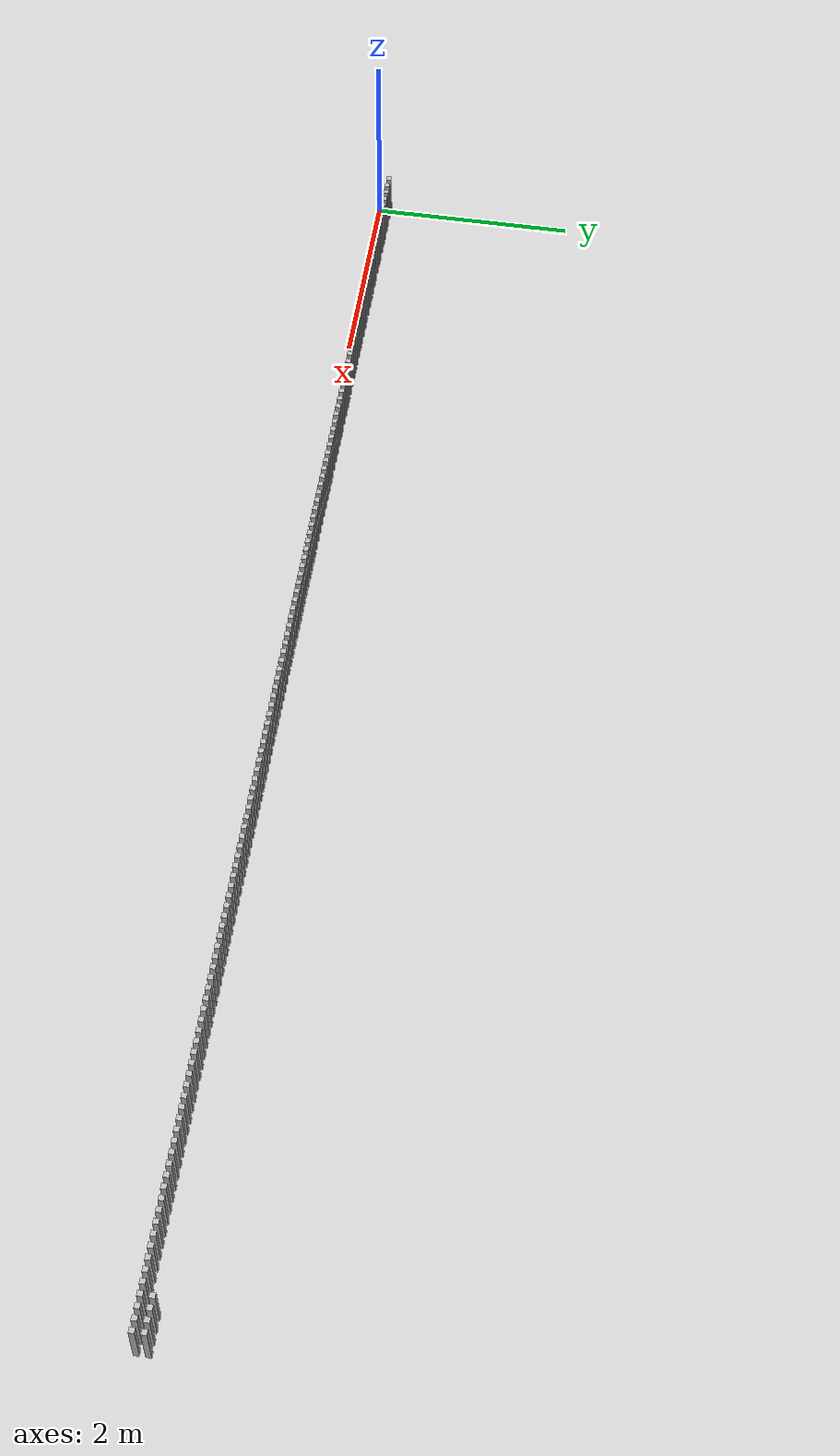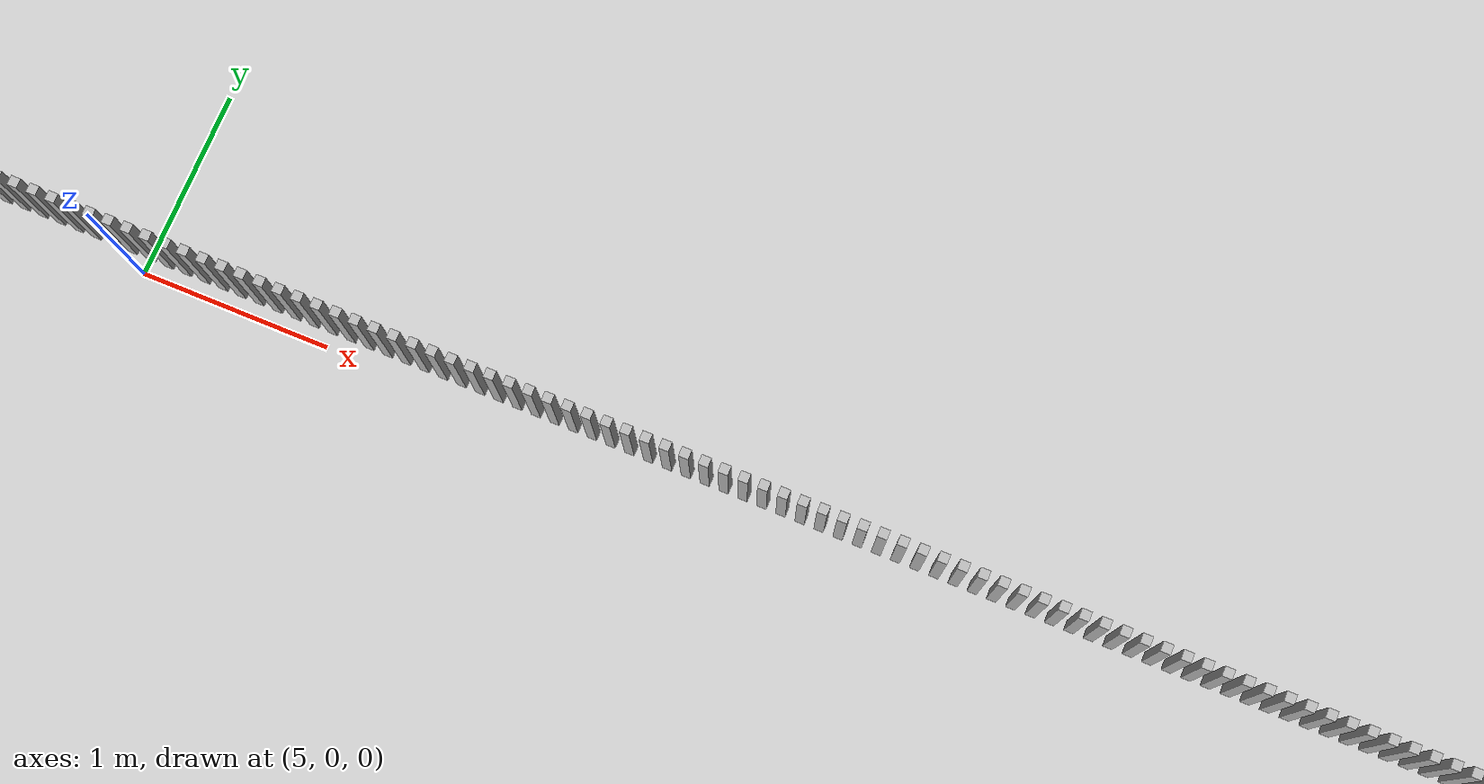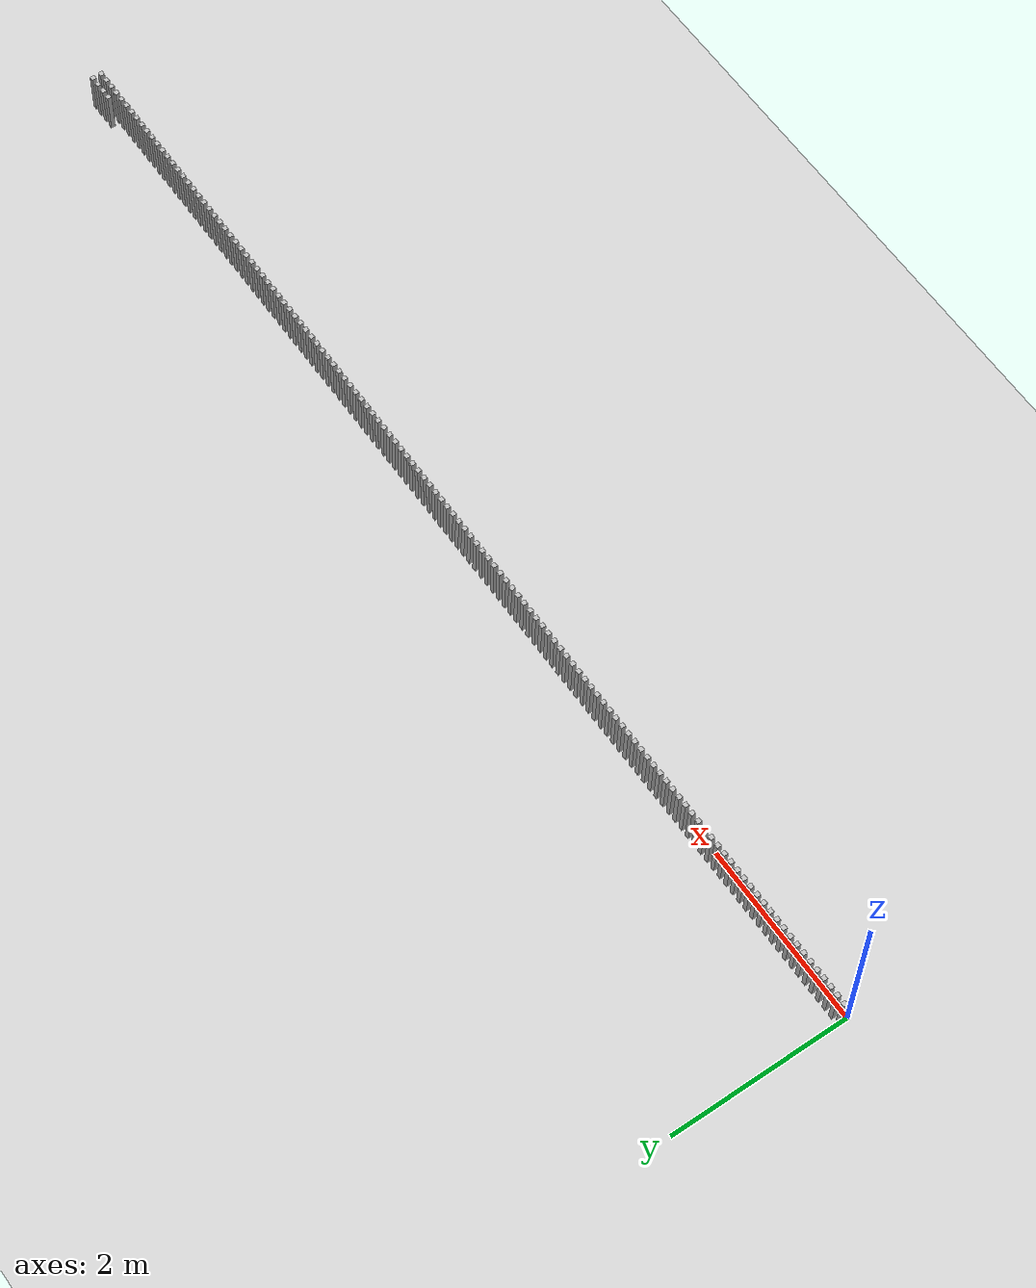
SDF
<sdf version="1.6">
 <world name="default_world">
  <include><uri>model://sun</uri></include>
  <include><uri>model://ground_plane</uri></include>
  <model name="wall_1177">
   <static>true</static>
   <link name="link">
    <collision name="collision"><geometry><box><size>0.05 0.05 0.5</size></box></geometry></collision>
    <visual name="visual"><geometry><box><size>0.05 0.05 0.5</size></box></geometry></visual>
    <pose>12.4 0.2 0.25 0 0 0</pose>
   </link>
  </model>
  <model name="wall_1178">
   <static>true</static>
   <link name="link">
    <collision name="collision"><geometry><box><size>0.05 0.05 0.5</size></box></geometry></collision>
    <visual name="visual"><geometry><box><size>0.05 0.05 0.5</size></box></geometry></visual>
    <pose>12.5 0.2 0.25 0 0 0</pose>
   </link>
  </model>
  <model name="wall_1179">
   <static>true</static>
   <link name="link">
    <collision name="collision"><geometry><box><size>0.05 0.05 0.5</size></box></geometry></collision>
    <visual name="visual"><geometry><box><size>0.05 0.05 0.5</size></box></geometry></visual>
    <pose>12.600000000000001 0.2 0.25 0 0 0</pose>
   </link>
  </model>
  <model name="wall_1180">
   <static>true</static>
   <link name="link">
    <collision name="collision"><geometry><box><size>0.05 0.05 0.5</size></box></geometry></collision>
    <visual name="visual"><geometry><box><size>0.05 0.05 0.5</size></box></geometry></visual>
    <pose>12.700000000000001 0.2 0.25 0 0 0</pose>
   </link>
  </model>
  <model name="wall_1181">
   <static>true</static>
   <link name="link">
    <collision name="collision"><geometry><box><size>0.05 0.05 0.5</size></box></geometry></collision>
    <visual name="visual"><geometry><box><size>0.05 0.05 0.5</size></box></geometry></visual>
    <pose>0.0 0.1 0.25 0 0 0</pose>
   </link>
  </model>
  <model name="wall_1182">
   <static>true</static>
   <link name="link">
    <collision name="collision"><geometry><box><size>0.05 0.05 0.5</size></box></geometry></collision>
    <visual name="visual"><geometry><box><size>0.05 0.05 0.5</size></box></geometry></visual>
    <pose>0.1 0.1 0.25 0 0 0</pose>
   </link>
  </model>
  <model name="wall_1183">
   <static>true</static>
   <link name="link">
    <collision name="collision"><geometry><box><size>0.05 0.05 0.5</size></box></geometry></collision>
    <visual name="visual"><geometry><box><size>0.05 0.05 0.5</size></box></geometry></visual>
    <pose>0.2 0.1 0.25 0 0 0</pose>
   </link>
  </model>
  <model name="wall_1184">
   <static>true</static>
   <link name="link">
    <collision name="collision"><geometry><box><size>0.05 0.05 0.5</size></box></geometry></collision>
    <visual name="visual"><geometry><box><size>0.05 0.05 0.5</size></box></geometry></visual>
    <pose>0.30000000000000004 0.1 0.25 0 0 0</pose>
   </link>
  </model>
  <model name="wall_1185">
   <static>true</static>
   <link name="link">
    <collision name="collision"><geometry><box><size>0.05 0.05 0.5</size></box></geometry></collision>
    <visual name="visual"><geometry><box><size>0.05 0.05 0.5</size></box></geometry></visual>
    <pose>0.4 0.1 0.25 0 0 0</pose>
   </link>
  </model>
  <model name="wall_1186">
   <static>true</static>
   <link name="link">
    <collision name="collision"><geometry><box><size>0.05 0.05 0.5</size></box></geometry></collision>
    <visual name="visual"><geometry><box><size>0.05 0.05 0.5</size></box></geometry></visual>
    <pose>0.5 0.1 0.25 0 0 0</pose>
   </link>
  </model>
  <model name="wall_1187">
   <static>true</static>
   <link name="link">
    <collision name="collision"><geometry><box><size>0.05 0.05 0.5</size></box></geometry></collision>
    <visual name="visual"><geometry><box><size>0.05 0.05 0.5</size></box></geometry></visual>
    <pose>0.6000000000000001 0.1 0.25 0 0 0</pose>
   </link>
  </model>
  <model name="wall_1188">
   <static>true</static>
   <link name="link">
    <collision name="collision"><geometry><box><size>0.05 0.05 0.5</size></box></geometry></collision>
    <visual name="visual"><geometry><box><size>0.05 0.05 0.5</size></box></geometry></visual>
    <pose>0.7000000000000001 0.1 0.25 0 0 0</pose>
   </link>
  </model>
  <model name="wall_1189">
   <static>true</static>
   <link name="link">
    <collision name="collision"><geometry><box><size>0.05 0.05 0.5</size></box></geometry></collision>
    <visual name="visual"><geometry><box><size>0.05 0.05 0.5</size></box></geometry></visual>
    <pose>0.8 0.1 0.25 0 0 0</pose>
   </link>
  </model>
  <model name="wall_1190">
   <static>true</static>
   <link name="link">
    <collision name="collision"><geometry><box><size>0.05 0.05 0.5</size></box></geometry></collision>
    <visual name="visual"><geometry><box><size>0.05 0.05 0.5</size></box></geometry></visual>
    <pose>0.9 0.1 0.25 0 0 0</pose>
   </link>
  </model>
  <model name="wall_1191">
   <static>true</static>
   <link name="link">
    <collision name="collision"><geometry><box><size>0.05 0.05 0.5</size></box></geometry></collision>
    <visual name="visual"><geometry><box><size>0.05 0.05 0.5</size></box></geometry></visual>
    <pose>1.0 0.1 0.25 0 0 0</pose>
   </link>
  </model>
  <model name="wall_1192">
   <static>true</static>
   <link name="link">
    <collision name="collision"><geometry><box><size>0.05 0.05 0.5</size></box></geometry></collision>
    <visual name="visual"><geometry><box><size>0.05 0.05 0.5</size></box></geometry></visual>
    <pose>1.1 0.1 0.25 0 0 0</pose>
   </link>
  </model>
  <model name="wall_1193">
   <static>true</static>
   <link name="link">
    <collision name="collision"><geometry><box><size>0.05 0.05 0.5</size></box></geometry></collision>
    <visual name="visual"><geometry><box><size>0.05 0.05 0.5</size></box></geometry></visual>
    <pose>1.2000000000000002 0.1 0.25 0 0 0</pose>
   </link>
  </model>
  <model name="wall_1194">
   <static>true</static>
   <link name="link">
    <collision name="collision"><geometry><box><size>0.05 0.05 0.5</size></box></geometry></collision>
    <visual name="visual"><geometry><box><size>0.05 0.05 0.5</size></box></geometry></visual>
    <pose>1.3 0.1 0.25 0 0 0</pose>
   </link>
  </model>
  <model name="wall_1195">
   <static>true</static>
   <link name="link">
    <collision name="collision"><geometry><box><size>0.05 0.05 0.5</size></box></geometry></collision>
    <visual name="visual"><geometry><box><size>0.05 0.05 0.5</size></box></geometry></visual>
    <pose>1.4000000000000001 0.1 0.25 0 0 0</pose>
   </link>
  </model>
  <model name="wall_1196">
   <static>true</static>
   <link name="link">
    <collision name="collision"><geometry><box><size>0.05 0.05 0.5</size></box></geometry></collision>
    <visual name="visual"><geometry><box><size>0.05 0.05 0.5</size></box></geometry></visual>
    <pose>1.5 0.1 0.25 0 0 0</pose>
   </link>
  </model>
  <model name="wall_1197">
   <static>true</static>
   <link name="link">
    <collision name="collision"><geometry><box><size>0.05 0.05 0.5</size></box></geometry></collision>
    <visual name="visual"><geometry><box><size>0.05 0.05 0.5</size></box></geometry></visual>
    <pose>1.6 0.1 0.25 0 0 0</pose>
   </link>
  </model>
  <model name="wall_1198">
   <static>true</static>
   <link name="link">
    <collision name="collision"><geometry><box><size>0.05 0.05 0.5</size></box></geometry></collision>
    <visual name="visual"><geometry><box><size>0.05 0.05 0.5</size></box></geometry></visual>
    <pose>1.7000000000000002 0.1 0.25 0 0 0</pose>
   </link>
  </model>
  <model name="wall_1199">
   <static>true</static>
   <link name="link">
    <collision name="collision"><geometry><box><size>0.05 0.05 0.5</size></box></geometry></collision>
    <visual name="visual"><geometry><box><size>0.05 0.05 0.5</size></box></geometry></visual>
    <pose>1.8 0.1 0.25 0 0 0</pose>
   </link>
  </model>
  <model name="wall_1200">
   <static>true</static>
   <link name="link">
    <collision name="collision"><geometry><box><size>0.05 0.05 0.5</size></box></geometry></collision>
    <visual name="visual"><geometry><box><size>0.05 0.05 0.5</size></box></geometry></visual>
    <pose>1.9000000000000001 0.1 0.25 0 0 0</pose>
   </link>
  </model>
  <model name="wall_1201">
   <static>true</static>
   <link name="link">
    <collision name="collision"><geometry><box><size>0.05 0.05 0.5</size></box></geometry></collision>
    <visual name="visual"><geometry><box><size>0.05 0.05 0.5</size></box></geometry></visual>
    <pose>2.0 0.1 0.25 0 0 0</pose>
   </link>
  </model>
  <model name="wall_1202">
   <static>true</static>
   <link name="link">
    <collision name="collision"><geometry><box><size>0.05 0.05 0.5</size></box></geometry></collision>
    <visual name="visual"><geometry><box><size>0.05 0.05 0.5</size></box></geometry></visual>
    <pose>2.1 0.1 0.25 0 0 0</pose>
   </link>
  </model>
  <model name="wall_1203">
   <static>true</static>
   <link name="link">
    <collision name="collision"><geometry><box><size>0.05 0.05 0.5</size></box></geometry></collision>
    <visual name="visual"><geometry><box><size>0.05 0.05 0.5</size></box></geometry></visual>
    <pose>2.2 0.1 0.25 0 0 0</pose>
   </link>
  </model>
  <model name="wall_1204">
   <static>true</static>
   <link name="link">
    <collision name="collision"><geometry><box><size>0.05 0.05 0.5</size></box></geometry></collision>
    <visual name="visual"><geometry><box><size>0.05 0.05 0.5</size></box></geometry></visual>
    <pose>2.3000000000000003 0.1 0.25 0 0 0</pose>
   </link>
  </model>
  <model name="wall_1205">
   <static>true</static>
   <link name="link">
    <collision name="collision"><geometry><box><size>0.05 0.05 0.5</size></box></geometry></collision>
    <visual name="visual"><geometry><box><size>0.05 0.05 0.5</size></box></geometry></visual>
    <pose>2.4000000000000004 0.1 0.25 0 0 0</pose>
   </link>
  </model>
  <model name="wall_1206">
   <static>true</static>
   <link name="link">
    <collision name="collision"><geometry><box><size>0.05 0.05 0.5</size></box></geometry></collision>
    <visual name="visual"><geometry><box><size>0.05 0.05 0.5</size></box></geometry></visual>
    <pose>2.5 0.1 0.25 0 0 0</pose>
   </link>
  </model>
  <model name="wall_1207">
   <static>true</static>
   <link name="link">
    <collision name="collision"><geometry><box><size>0.05 0.05 0.5</size></box></geometry></collision>
    <visual name="visual"><geometry><box><size>0.05 0.05 0.5</size></box></geometry></visual>
    <pose>2.6 0.1 0.25 0 0 0</pose>
   </link>
  </model>
  <model name="wall_1208">
   <static>true</static>
   <link name="link">
    <collision name="collision"><geometry><box><size>0.05 0.05 0.5</size></box></geometry></collision>
    <visual name="visual"><geometry><box><size>0.05 0.05 0.5</size></box></geometry></visual>
    <pose>2.7 0.1 0.25 0 0 0</pose>
   </link>
  </model>
  <model name="wall_1209">
   <static>true</static>
   <link name="link">
    <collision name="collision"><geometry><box><size>0.05 0.05 0.5</size></box></geometry></collision>
    <visual name="visual"><geometry><box><size>0.05 0.05 0.5</size></box></geometry></visual>
    <pose>2.8000000000000003 0.1 0.25 0 0 0</pose>
   </link>
  </model>
  <model name="wall_1210">
   <static>true</static>
   <link name="link">
    <collision name="collision"><geometry><box><size>0.05 0.05 0.5</size></box></geometry></collision>
    <visual name="visual"><geometry><box><size>0.05 0.05 0.5</size></box></geometry></visual>
    <pose>2.9000000000000004 0.1 0.25 0 0 0</pose>
   </link>
  </model>
  <model name="wall_1211">
   <static>true</static>
   <link name="link">
    <collision name="collision"><geometry><box><size>0.05 0.05 0.5</size></box></geometry></collision>
    <visual name="visual"><geometry><box><size>0.05 0.05 0.5</size></box></geometry></visual>
    <pose>3.0 0.1 0.25 0 0 0</pose>
   </link>
  </model>
  <model name="wall_1212">
   <static>true</static>
   <link name="link">
    <collision name="collision"><geometry><box><size>0.05 0.05 0.5</size></box></geometry></collision>
    <visual name="visual"><geometry><box><size>0.05 0.05 0.5</size></box></geometry></visual>
    <pose>3.1 0.1 0.25 0 0 0</pose>
   </link>
  </model>
  <model name="wall_1213">
   <static>true</static>
   <link name="link">
    <collision name="collision"><geometry><box><size>0.05 0.05 0.5</size></box></geometry></collision>
    <visual name="visual"><geometry><box><size>0.05 0.05 0.5</size></box></geometry></visual>
    <pose>3.2 0.1 0.25 0 0 0</pose>
   </link>
  </model>
  <model name="wall_1214">
   <static>true</static>
   <link name="link">
    <collision name="collision"><geometry><box><size>0.05 0.05 0.5</size></box></geometry></collision>
    <visual name="visual"><geometry><box><size>0.05 0.05 0.5</size></box></geometry></visual>
    <pose>3.3000000000000003 0.1 0.25 0 0 0</pose>
   </link>
  </model>
  <model name="wall_1215">
   <static>true</static>
   <link name="link">
    <collision name="collision"><geometry><box><size>0.05 0.05 0.5</size></box></geometry></collision>
    <visual name="visual"><geometry><box><size>0.05 0.05 0.5</size></box></geometry></visual>
    <pose>3.4000000000000004 0.1 0.25 0 0 0</pose>
   </link>
  </model>
  <model name="wall_1216">
   <static>true</static>
   <link name="link">
    <collision name="collision"><geometry><box><size>0.05 0.05 0.5</size></box></geometry></collision>
    <visual name="visual"><geometry><box><size>0.05 0.05 0.5</size></box></geometry></visual>
    <pose>3.5 0.1 0.25 0 0 0</pose>
   </link>
  </model>
  <model name="wall_1217">
   <static>true</static>
   <link name="link">
    <collision name="collision"><geometry><box><size>0.05 0.05 0.5</size></box></geometry></collision>
    <visual name="visual"><geometry><box><size>0.05 0.05 0.5</size></box></geometry></visual>
    <pose>3.6 0.1 0.25 0 0 0</pose>
   </link>
  </model>
  <model name="wall_1218">
   <static>true</static>
   <link name="link">
    <collision name="collision"><geometry><box><size>0.05 0.05 0.5</size></box></geometry></collision>
    <visual name="visual"><geometry><box><size>0.05 0.05 0.5</size></box></geometry></visual>
    <pose>3.7 0.1 0.25 0 0 0</pose>
   </link>
  </model>
  <model name="wall_1219">
   <static>true</static>
   <link name="link">
    <collision name="collision"><geometry><box><size>0.05 0.05 0.5</size></box></geometry></collision>
    <visual name="visual"><geometry><box><size>0.05 0.05 0.5</size></box></geometry></visual>
    <pose>3.8000000000000003 0.1 0.25 0 0 0</pose>
   </link>
  </model>
  <model name="wall_1220">
   <static>true</static>
   <link name="link">
    <collision name="collision"><geometry><box><size>0.05 0.05 0.5</size></box></geometry></collision>
    <visual name="visual"><geometry><box><size>0.05 0.05 0.5</size></box></geometry></visual>
    <pose>3.9000000000000004 0.1 0.25 0 0 0</pose>
   </link>
  </model>
  <model name="wall_1221">
   <static>true</static>
   <link name="link">
    <collision name="collision"><geometry><box><size>0.05 0.05 0.5</size></box></geometry></collision>
    <visual name="visual"><geometry><box><size>0.05 0.05 0.5</size></box></geometry></visual>
    <pose>4.0 0.1 0.25 0 0 0</pose>
   </link>
  </model>
  <model name="wall_1222">
   <static>true</static>
   <link name="link">
    <collision name="collision"><geometry><box><size>0.05 0.05 0.5</size></box></geometry></collision>
    <visual name="visual"><geometry><box><size>0.05 0.05 0.5</size></box></geometry></visual>
    <pose>4.1000000000000005 0.1 0.25 0 0 0</pose>
   </link>
  </model>
  <model name="wall_1223">
   <static>true</static>
   <link name="link">
    <collision name="collision"><geometry><box><size>0.05 0.05 0.5</size></box></geometry></collision>
    <visual name="visual"><geometry><box><size>0.05 0.05 0.5</size></box></geometry></visual>
    <pose>4.2 0.1 0.25 0 0 0</pose>
   </link>
  </model>
  <model name="wall_1224">
   <static>true</static>
   <link name="link">
    <collision name="collision"><geometry><box><size>0.05 0.05 0.5</size></box></geometry></collision>
    <visual name="visual"><geometry><box><size>0.05 0.05 0.5</size></box></geometry></visual>
    <pose>4.3 0.1 0.25 0 0 0</pose>
   </link>
  </model>
  <model name="wall_1225">
   <static>true</static>
   <link name="link">
    <collision name="collision"><geometry><box><size>0.05 0.05 0.5</size></box></geometry></collision>
    <visual name="visual"><geometry><box><size>0.05 0.05 0.5</size></box></geometry></visual>
    <pose>4.4 0.1 0.25 0 0 0</pose>
   </link>
  </model>
  <model name="wall_1226">
   <static>true</static>
   <link name="link">
    <collision name="collision"><geometry><box><size>0.05 0.05 0.5</size></box></geometry></collision>
    <visual name="visual"><geometry><box><size>0.05 0.05 0.5</size></box></geometry></visual>
    <pose>4.5 0.1 0.25 0 0 0</pose>
   </link>
  </model>
  <model name="wall_1227">
   <static>true</static>
   <link name="link">
    <collision name="collision"><geometry><box><size>0.05 0.05 0.5</size></box></geometry></collision>
    <visual name="visual"><geometry><box><size>0.05 0.05 0.5</size></box></geometry></visual>
    <pose>4.6000000000000005 0.1 0.25 0 0 0</pose>
   </link>
  </model>
  <model name="wall_1228">
   <static>true</static>
   <link name="link">
    <collision name="collision"><geometry><box><size>0.05 0.05 0.5</size></box></geometry></collision>
    <visual name="visual"><geometry><box><size>0.05 0.05 0.5</size></box></geometry></visual>
    <pose>4.7 0.1 0.25 0 0 0</pose>
   </link>
  </model>
  <model name="wall_1229">
   <static>true</static>
   <link name="link">
    <collision name="collision"><geometry><box><size>0.05 0.05 0.5</size></box></geometry></collision>
    <visual name="visual"><geometry><box><size>0.05 0.05 0.5</size></box></geometry></visual>
    <pose>4.800000000000001 0.1 0.25 0 0 0</pose>
   </link>
  </model>
  <model name="wall_1230">
   <static>true</static>
   <link name="link">
    <collision name="collision"><geometry><box><size>0.05 0.05 0.5</size></box></geometry></collision>
    <visual name="visual"><geometry><box><size>0.05 0.05 0.5</size></box></geometry></visual>
    <pose>4.9 0.1 0.25 0 0 0</pose>
   </link>
  </model>
  <model name="wall_1231">
   <static>true</static>
   <link name="link">
    <collision name="collision"><geometry><box><size>0.05 0.05 0.5</size></box></geometry></collision>
    <visual name="visual"><geometry><box><size>0.05 0.05 0.5</size></box></geometry></visual>
    <pose>5.0 0.1 0.25 0 0 0</pose>
   </link>
  </model>
  <model name="wall_1232">
   <static>true</static>
   <link name="link">
    <collision name="collision"><geometry><box><size>0.05 0.05 0.5</size></box></geometry></collision>
    <visual name="visual"><geometry><box><size>0.05 0.05 0.5</size></box></geometry></visual>
    <pose>5.1000000000000005 0.1 0.25 0 0 0</pose>
   </link>
  </model>
  <model name="wall_1233">
   <static>true</static>
   <link name="link">
    <collision name="collision"><geometry><box><size>0.05 0.05 0.5</size></box></geometry></collision>
    <visual name="visual"><geometry><box><size>0.05 0.05 0.5</size></box></geometry></visual>
    <pose>5.2 0.1 0.25 0 0 0</pose>
   </link>
  </model>
  <model name="wall_1234">
   <static>true</static>
   <link name="link">
    <collision name="collision"><geometry><box><size>0.05 0.05 0.5</size></box></geometry></collision>
    <visual name="visual"><geometry><box><size>0.05 0.05 0.5</size></box></geometry></visual>
    <pose>5.300000000000001 0.1 0.25 0 0 0</pose>
   </link>
  </model>
  <model name="wall_1235">
   <static>true</static>
   <link name="link">
    <collision name="collision"><geometry><box><size>0.05 0.05 0.5</size></box></geometry></collision>
    <visual name="visual"><geometry><box><size>0.05 0.05 0.5</size></box></geometry></visual>
    <pose>5.4 0.1 0.25 0 0 0</pose>
   </link>
  </model>
  <model name="wall_1236">
   <static>true</static>
   <link name="link">
    <collision name="collision"><geometry><box><size>0.05 0.05 0.5</size></box></geometry></collision>
    <visual name="visual"><geometry><box><size>0.05 0.05 0.5</size></box></geometry></visual>
    <pose>5.5 0.1 0.25 0 0 0</pose>
   </link>
  </model>
  <model name="wall_1237">
   <static>true</static>
   <link name="link">
    <collision name="collision"><geometry><box><size>0.05 0.05 0.5</size></box></geometry></collision>
    <visual name="visual"><geometry><box><size>0.05 0.05 0.5</size></box></geometry></visual>
    <pose>5.6000000000000005 0.1 0.25 0 0 0</pose>
   </link>
  </model>
  <model name="wall_1238">
   <static>true</static>
   <link name="link">
    <collision name="collision"><geometry><box><size>0.05 0.05 0.5</size></box></geometry></collision>
    <visual name="visual"><geometry><box><size>0.05 0.05 0.5</size></box></geometry></visual>
    <pose>5.7 0.1 0.25 0 0 0</pose>
   </link>
  </model>
  <model name="wall_1239">
   <static>true</static>
   <link name="link">
    <collision name="collision"><geometry><box><size>0.05 0.05 0.5</size></box></geometry></collision>
    <visual name="visual"><geometry><box><size>0.05 0.05 0.5</size></box></geometry></visual>
    <pose>5.800000000000001 0.1 0.25 0 0 0</pose>
   </link>
  </model>
  <model name="wall_1240">
   <static>true</static>
   <link name="link">
    <collision name="collision"><geometry><box><size>0.05 0.05 0.5</size></box></geometry></collision>
    <visual name="visual"><geometry><box><size>0.05 0.05 0.5</size></box></geometry></visual>
    <pose>5.9 0.1 0.25 0 0 0</pose>
   </link>
  </model>
  <model name="wall_1241">
   <static>true</static>
   <link name="link">
    <collision name="collision"><geometry><box><size>0.05 0.05 0.5</size></box></geometry></collision>
    <visual name="visual"><geometry><box><size>0.05 0.05 0.5</size></box></geometry></visual>
    <pose>6.0 0.1 0.25 0 0 0</pose>
   </link>
  </model>
  <model name="wall_1242">
   <static>true</static>
   <link name="link">
    <collision name="collision"><geometry><box><size>0.05 0.05 0.5</size></box></geometry></collision>
    <visual name="visual"><geometry><box><size>0.05 0.05 0.5</size></box></geometry></visual>
    <pose>6.1000000000000005 0.1 0.25 0 0 0</pose>
   </link>
  </model>
  <model name="wall_1243">
   <static>true</static>
   <link name="link">
    <collision name="collision"><geometry><box><size>0.05 0.05 0.5</size></box></geometry></collision>
    <visual name="visual"><geometry><box><size>0.05 0.05 0.5</size></box></geometry></visual>
    <pose>6.2 0.1 0.25 0 0 0</pose>
   </link>
  </model>
  <model name="wall_1244">
   <static>true</static>
   <link name="link">
    <collision name="collision"><geometry><box><size>0.05 0.05 0.5</size></box></geometry></collision>
    <visual name="visual"><geometry><box><size>0.05 0.05 0.5</size></box></geometry></visual>
    <pose>6.300000000000001 0.1 0.25 0 0 0</pose>
   </link>
  </model>
  <model name="wall_1245">
   <static>true</static>
   <link name="link">
    <collision name="collision"><geometry><box><size>0.05 0.05 0.5</size></box></geometry></collision>
    <visual name="visual"><geometry><box><size>0.05 0.05 0.5</size></box></geometry></visual>
    <pose>6.4 0.1 0.25 0 0 0</pose>
   </link>
  </model>
  <model name="wall_1246">
   <static>true</static>
   <link name="link">
    <collision name="collision"><geometry><box><size>0.05 0.05 0.5</size></box></geometry></collision>
    <visual name="visual"><geometry><box><size>0.05 0.05 0.5</size></box></geometry></visual>
    <pose>6.5 0.1 0.25 0 0 0</pose>
   </link>
  </model>
  <model name="wall_1247">
   <static>true</static>
   <link name="link">
    <collision name="collision"><geometry><box><size>0.05 0.05 0.5</size></box></geometry></collision>
    <visual name="visual"><geometry><box><size>0.05 0.05 0.5</size></box></geometry></visual>
    <pose>6.6000000000000005 0.1 0.25 0 0 0</pose>
   </link>
  </model>
  <model name="wall_1248">
   <static>true</static>
   <link name="link">
    <collision name="collision"><geometry><box><size>0.05 0.05 0.5</size></box></geometry></collision>
    <visual name="visual"><geometry><box><size>0.05 0.05 0.5</size></box></geometry></visual>
    <pose>6.7 0.1 0.25 0 0 0</pose>
   </link>
  </model>
  <model name="wall_1249">
   <static>true</static>
   <link name="link">
    <collision name="collision"><geometry><box><size>0.05 0.05 0.5</size></box></geometry></collision>
    <visual name="visual"><geometry><box><size>0.05 0.05 0.5</size></box></geometry></visual>
    <pose>6.800000000000001 0.1 0.25 0 0 0</pose>
   </link>
  </model>
  <model name="wall_1250">
   <static>true</static>
   <link name="link">
    <collision name="collision"><geometry><box><size>0.05 0.05 0.5</size></box></geometry></collision>
    <visual name="visual"><geometry><box><size>0.05 0.05 0.5</size></box></geometry></visual>
    <pose>6.9 0.1 0.25 0 0 0</pose>
   </link>
  </model>
  <model name="wall_1251">
   <static>true</static>
   <link name="link">
    <collision name="collision"><geometry><box><size>0.05 0.05 0.5</size></box></geometry></collision>
    <visual name="visual"><geometry><box><size>0.05 0.05 0.5</size></box></geometry></visual>
    <pose>7.0 0.1 0.25 0 0 0</pose>
   </link>
  </model>
  <model name="wall_1252">
   <static>true</static>
   <link name="link">
    <collision name="collision"><geometry><box><size>0.05 0.05 0.5</size></box></geometry></collision>
    <visual name="visual"><geometry><box><size>0.05 0.05 0.5</size></box></geometry></visual>
    <pose>7.1000000000000005 0.1 0.25 0 0 0</pose>
   </link>
  </model>
  <model name="wall_1253">
   <static>true</static>
   <link name="link">
    <collision name="collision"><geometry><box><size>0.05 0.05 0.5</size></box></geometry></collision>
    <visual name="visual"><geometry><box><size>0.05 0.05 0.5</size></box></geometry></visual>
    <pose>7.2 0.1 0.25 0 0 0</pose>
   </link>
  </model>
  <model name="wall_1254">
   <static>true</static>
   <link name="link">
    <collision name="collision"><geometry><box><size>0.05 0.05 0.5</size></box></geometry></collision>
    <visual name="visual"><geometry><box><size>0.05 0.05 0.5</size></box></geometry></visual>
    <pose>7.300000000000001 0.1 0.25 0 0 0</pose>
   </link>
  </model>
  <model name="wall_1255">
   <static>true</static>
   <link name="link">
    <collision name="collision"><geometry><box><size>0.05 0.05 0.5</size></box></geometry></collision>
    <visual name="visual"><geometry><box><size>0.05 0.05 0.5</size></box></geometry></visual>
    <pose>7.4 0.1 0.25 0 0 0</pose>
   </link>
  </model>
  <model name="wall_1256">
   <static>true</static>
   <link name="link">
    <collision name="collision"><geometry><box><size>0.05 0.05 0.5</size></box></geometry></collision>
    <visual name="visual"><geometry><box><size>0.05 0.05 0.5</size></box></geometry></visual>
    <pose>7.5 0.1 0.25 0 0 0</pose>
   </link>
  </model>
  <model name="wall_1257">
   <static>true</static>
   <link name="link">
    <collision name="collision"><geometry><box><size>0.05 0.05 0.5</size></box></geometry></collision>
    <visual name="visual"><geometry><box><size>0.05 0.05 0.5</size></box></geometry></visual>
    <pose>7.6000000000000005 0.1 0.25 0 0 0</pose>
   </link>
  </model>
  <model name="wall_1258">
   <static>true</static>
   <link name="link">
    <collision name="collision"><geometry><box><size>0.05 0.05 0.5</size></box></geometry></collision>
    <visual name="visual"><geometry><box><size>0.05 0.05 0.5</size></box></geometry></visual>
    <pose>7.7 0.1 0.25 0 0 0</pose>
   </link>
  </model>
  <model name="wall_1259">
   <static>true</static>
   <link name="link">
    <collision name="collision"><geometry><box><size>0.05 0.05 0.5</size></box></geometry></collision>
    <visual name="visual"><geometry><box><size>0.05 0.05 0.5</size></box></geometry></visual>
    <pose>7.800000000000001 0.1 0.25 0 0 0</pose>
   </link>
  </model>
  <model name="wall_1260">
   <static>true</static>
   <link name="link">
    <collision name="collision"><geometry><box><size>0.05 0.05 0.5</size></box></geometry></collision>
    <visual name="visual"><geometry><box><size>0.05 0.05 0.5</size></box></geometry></visual>
    <pose>7.9 0.1 0.25 0 0 0</pose>
   </link>
  </model>
  <model name="wall_1261">
   <static>true</static>
   <link name="link">
    <collision name="collision"><geometry><box><size>0.05 0.05 0.5</size></box></geometry></collision>
    <visual name="visual"><geometry><box><size>0.05 0.05 0.5</size></box></geometry></visual>
    <pose>8.0 0.1 0.25 0 0 0</pose>
   </link>
  </model>
  <model name="wall_1262">
   <static>true</static>
   <link name="link">
    <collision name="collision"><geometry><box><size>0.05 0.05 0.5</size></box></geometry></collision>
    <visual name="visual"><geometry><box><size>0.05 0.05 0.5</size></box></geometry></visual>
    <pose>8.1 0.1 0.25 0 0 0</pose>
   </link>
  </model>
  <model name="wall_1263">
   <static>true</static>
   <link name="link">
    <collision name="collision"><geometry><box><size>0.05 0.05 0.5</size></box></geometry></collision>
    <visual name="visual"><geometry><box><size>0.05 0.05 0.5</size></box></geometry></visual>
    <pose>8.200000000000001 0.1 0.25 0 0 0</pose>
   </link>
  </model>
  <model name="wall_1264">
   <static>true</static>
   <link name="link">
    <collision name="collision"><geometry><box><size>0.05 0.05 0.5</size></box></geometry></collision>
    <visual name="visual"><geometry><box><size>0.05 0.05 0.5</size></box></geometry></visual>
    <pose>8.3 0.1 0.25 0 0 0</pose>
   </link>
  </model>
  <model name="wall_1265">
   <static>true</static>
   <link name="link">
    <collision name="collision"><geometry><box><size>0.05 0.05 0.5</size></box></geometry></collision>
    <visual name="visual"><geometry><box><size>0.05 0.05 0.5</size></box></geometry></visual>
    <pose>8.4 0.1 0.25 0 0 0</pose>
   </link>
  </model>
  <model name="wall_1266">
   <static>true</static>
   <link name="link">
    <collision name="collision"><geometry><box><size>0.05 0.05 0.5</size></box></geometry></collision>
    <visual name="visual"><geometry><box><size>0.05 0.05 0.5</size></box></geometry></visual>
    <pose>8.5 0.1 0.25 0 0 0</pose>
   </link>
  </model>
  <model name="wall_1267">
   <static>true</static>
   <link name="link">
    <collision name="collision"><geometry><box><size>0.05 0.05 0.5</size></box></geometry></collision>
    <visual name="visual"><geometry><box><size>0.05 0.05 0.5</size></box></geometry></visual>
    <pose>8.6 0.1 0.25 0 0 0</pose>
   </link>
  </model>
  <model name="wall_1268">
   <static>true</static>
   <link name="link">
    <collision name="collision"><geometry><box><size>0.05 0.05 0.5</size></box></geometry></collision>
    <visual name="visual"><geometry><box><size>0.05 0.05 0.5</size></box></geometry></visual>
    <pose>8.700000000000001 0.1 0.25 0 0 0</pose>
   </link>
  </model>
  <model name="wall_1269">
   <static>true</static>
   <link name="link">
    <collision name="collision"><geometry><box><size>0.05 0.05 0.5</size></box></geometry></collision>
    <visual name="visual"><geometry><box><size>0.05 0.05 0.5</size></box></geometry></visual>
    <pose>8.8 0.1 0.25 0 0 0</pose>
   </link>
  </model>
  <model name="wall_1270">
   <static>true</static>
   <link name="link">
    <collision name="collision"><geometry><box><size>0.05 0.05 0.5</size></box></geometry></collision>
    <visual name="visual"><geometry><box><size>0.05 0.05 0.5</size></box></geometry></visual>
    <pose>8.9 0.1 0.25 0 0 0</pose>
   </link>
  </model>
  <model name="wall_1271">
   <static>true</static>
   <link name="link">
    <collision name="collision"><geometry><box><size>0.05 0.05 0.5</size></box></geometry></collision>
    <visual name="visual"><geometry><box><size>0.05 0.05 0.5</size></box></geometry></visual>
    <pose>9.0 0.1 0.25 0 0 0</pose>
   </link>
  </model>
  <model name="wall_1272">
   <static>true</static>
   <link name="link">
    <collision name="collision"><geometry><box><size>0.05 0.05 0.5</size></box></geometry></collision>
    <visual name="visual"><geometry><box><size>0.05 0.05 0.5</size></box></geometry></visual>
    <pose>9.1 0.1 0.25 0 0 0</pose>
   </link>
  </model>
  <model name="wall_1273">
   <static>true</static>
   <link name="link">
    <collision name="collision"><geometry><box><size>0.05 0.05 0.5</size></box></geometry></collision>
    <visual name="visual"><geometry><box><size>0.05 0.05 0.5</size></box></geometry></visual>
    <pose>9.200000000000001 0.1 0.25 0 0 0</pose>
   </link>
  </model>
  <model name="wall_1274">
   <static>true</static>
   <link name="link">
    <collision name="collision"><geometry><box><size>0.05 0.05 0.5</size></box></geometry></collision>
    <visual name="visual"><geometry><box><size>0.05 0.05 0.5</size></box></geometry></visual>
    <pose>9.3 0.1 0.25 0 0 0</pose>
   </link>
  </model>
  <model name="wall_1275">
   <static>true</static>
   <link name="link">
    <collision name="collision"><geometry><box><size>0.05 0.05 0.5</size></box></geometry></collision>
    <visual name="visual"><geometry><box><size>0.05 0.05 0.5</size></box></geometry></visual>
    <pose>9.4 0.1 0.25 0 0 0</pose>
   </link>
  </model>
  <model name="wall_1276">
   <static>true</static>
   <link name="link">
    <collision name="collision"><geometry><box><size>0.05 0.05 0.5</size></box></geometry></collision>
    <visual name="visual"><geometry><box><size>0.05 0.05 0.5</size></box></geometry></visual>
    <pose>9.5 0.1 0.25 0 0 0</pose>
   </link>
  </model>
  <model name="wall_1277">
   <static>true</static>
   <link name="link">
    <collision name="collision"><geometry><box><size>0.05 0.05 0.5</size></box></geometry></collision>
    <visual name="visual"><geometry><box><size>0.05 0.05 0.5</size></box></geometry></visual>
    <pose>9.600000000000001 0.1 0.25 0 0 0</pose>
   </link>
  </model>
  <model name="wall_1278">
   <static>true</static>
   <link name="link">
    <collision name="collision"><geometry><box><size>0.05 0.05 0.5</size></box></geometry></collision>
    <visual name="visual"><geometry><box><size>0.05 0.05 0.5</size></box></geometry></visual>
    <pose>9.700000000000001 0.1 0.25 0 0 0</pose>
   </link>
  </model>
  <model name="wall_1279">
   <static>true</static>
   <link name="link">
    <collision name="collision"><geometry><box><size>0.05 0.05 0.5</size></box></geometry></collision>
    <visual name="visual"><geometry><box><size>0.05 0.05 0.5</size></box></geometry></visual>
    <pose>9.8 0.1 0.25 0 0 0</pose>
   </link>
  </model>
  <model name="wall_1280">
   <static>true</static>
   <link name="link">
    <collision name="collision"><geometry><box><size>0.05 0.05 0.5</size></box></geometry></collision>
    <visual name="visual"><geometry><box><size>0.05 0.05 0.5</size></box></geometry></visual>
    <pose>9.9 0.1 0.25 0 0 0</pose>
   </link>
  </model>
  <model name="wall_1281">
   <static>true</static>
   <link name="link">
    <collision name="collision"><geometry><box><size>0.05 0.05 0.5</size></box></geometry></collision>
    <visual name="visual"><geometry><box><size>0.05 0.05 0.5</size></box></geometry></visual>
    <pose>10.0 0.1 0.25 0 0 0</pose>
   </link>
  </model>
  <model name="wall_1282">
   <static>true</static>
   <link name="link">
    <collision name="collision"><geometry><box><size>0.05 0.05 0.5</size></box></geometry></collision>
    <visual name="visual"><geometry><box><size>0.05 0.05 0.5</size></box></geometry></visual>
    <pose>10.100000000000001 0.1 0.25 0 0 0</pose>
   </link>
  </model>
  <model name="wall_1283">
   <static>true</static>
   <link name="link">
    <collision name="collision"><geometry><box><size>0.05 0.05 0.5</size></box></geometry></collision>
    <visual name="visual"><geometry><box><size>0.05 0.05 0.5</size></box></geometry></visual>
    <pose>10.200000000000001 0.1 0.25 0 0 0</pose>
   </link>
  </model>
  <model name="wall_1284">
   <static>true</static>
   <link name="link">
    <collision name="collision"><geometry><box><size>0.05 0.05 0.5</size></box></geometry></collision>
    <visual name="visual"><geometry><box><size>0.05 0.05 0.5</size></box></geometry></visual>
    <pose>10.3 0.1 0.25 0 0 0</pose>
   </link>
  </model>
  <model name="wall_1285">
   <static>true</static>
   <link name="link">
    <collision name="collision"><geometry><box><size>0.05 0.05 0.5</size></box></geometry></collision>
    <visual name="visual"><geometry><box><size>0.05 0.05 0.5</size></box></geometry></visual>
    <pose>10.4 0.1 0.25 0 0 0</pose>
   </link>
  </model>
  <model name="wall_1286">
   <static>true</static>
   <link name="link">
    <collision name="collision"><geometry><box><size>0.05 0.05 0.5</size></box></geometry></collision>
    <visual name="visual"><geometry><box><size>0.05 0.05 0.5</size></box></geometry></visual>
    <pose>10.5 0.1 0.25 0 0 0</pose>
   </link>
  </model>
  <model name="wall_1287">
   <static>true</static>
   <link name="link">
    <collision name="collision"><geometry><box><size>0.05 0.05 0.5</size></box></geometry></collision>
    <visual name="visual"><geometry><box><size>0.05 0.05 0.5</size></box></geometry></visual>
    <pose>10.600000000000001 0.1 0.25 0 0 0</pose>
   </link>
  </model>
  <model name="wall_1288">
   <static>true</static>
   <link name="link">
    <collision name="collision"><geometry><box><size>0.05 0.05 0.5</size></box></geometry></collision>
    <visual name="visual"><geometry><box><size>0.05 0.05 0.5</size></box></geometry></visual>
    <pose>10.700000000000001 0.1 0.25 0 0 0</pose>
   </link>
  </model>
  <model name="wall_1289">
   <static>true</static>
   <link name="link">
    <collision name="collision"><geometry><box><size>0.05 0.05 0.5</size></box></geometry></collision>
    <visual name="visual"><geometry><box><size>0.05 0.05 0.5</size></box></geometry></visual>
    <pose>10.8 0.1 0.25 0 0 0</pose>
   </link>
  </model>
  <model name="wall_1290">
   <static>true</static>
   <link name="link">
    <collision name="collision"><geometry><box><size>0.05 0.05 0.5</size></box></geometry></collision>
    <visual name="visual"><geometry><box><size>0.05 0.05 0.5</size></box></geometry></visual>
    <pose>10.9 0.1 0.25 0 0 0</pose>
   </link>
  </model>
  <model name="wall_1291">
   <static>true</static>
   <link name="link">
    <collision name="collision"><geometry><box><size>0.05 0.05 0.5</size></box></geometry></collision>
    <visual name="visual"><geometry><box><size>0.05 0.05 0.5</size></box></geometry></visual>
    <pose>11.0 0.1 0.25 0 0 0</pose>
   </link>
  </model>
  <model name="wall_1292">
   <static>true</static>
   <link name="link">
    <collision name="collision"><geometry><box><size>0.05 0.05 0.5</size></box></geometry></collision>
    <visual name="visual"><geometry><box><size>0.05 0.05 0.5</size></box></geometry></visual>
    <pose>11.100000000000001 0.1 0.25 0 0 0</pose>
   </link>
  </model>
  <model name="wall_1293">
   <static>true</static>
   <link name="link">
    <collision name="collision"><geometry><box><size>0.05 0.05 0.5</size></box></geometry></collision>
    <visual name="visual"><geometry><box><size>0.05 0.05 0.5</size></box></geometry></visual>
    <pose>11.200000000000001 0.1 0.25 0 0 0</pose>
   </link>
  </model>
  <model name="wall_1294">
   <static>true</static>
   <link name="link">
    <collision name="collision"><geometry><box><size>0.05 0.05 0.5</size></box></geometry></collision>
    <visual name="visual"><geometry><box><size>0.05 0.05 0.5</size></box></geometry></visual>
    <pose>11.3 0.1 0.25 0 0 0</pose>
   </link>
  </model>
  <model name="wall_1295">
   <static>true</static>
   <link name="link">
    <collision name="collision"><geometry><box><size>0.05 0.05 0.5</size></box></geometry></collision>
    <visual name="visual"><geometry><box><size>0.05 0.05 0.5</size></box></geometry></visual>
    <pose>11.4 0.1 0.25 0 0 0</pose>
   </link>
  </model>
  <model name="wall_1296">
   <static>true</static>
   <link name="link">
    <collision name="collision"><geometry><box><size>0.05 0.05 0.5</size></box></geometry></collision>
    <visual name="visual"><geometry><box><size>0.05 0.05 0.5</size></box></geometry></visual>
    <pose>11.5 0.1 0.25 0 0 0</pose>
   </link>
  </model>
  <model name="wall_1297">
   <static>true</static>
   <link name="link">
    <collision name="collision"><geometry><box><size>0.05 0.05 0.5</size></box></geometry></collision>
    <visual name="visual"><geometry><box><size>0.05 0.05 0.5</size></box></geometry></visual>
    <pose>11.600000000000001 0.1 0.25 0 0 0</pose>
   </link>
  </model>
  <model name="wall_1298">
   <static>true</static>
   <link name="link">
    <collision name="collision"><geometry><box><size>0.05 0.05 0.5</size></box></geometry></collision>
    <visual name="visual"><geometry><box><size>0.05 0.05 0.5</size></box></geometry></visual>
    <pose>11.700000000000001 0.1 0.25 0 0 0</pose>
   </link>
  </model>
  <model name="wall_1299">
   <static>true</static>
   <link name="link">
    <collision name="collision"><geometry><box><size>0.05 0.05 0.5</size></box></geometry></collision>
    <visual name="visual"><geometry><box><size>0.05 0.05 0.5</size></box></geometry></visual>
    <pose>11.8 0.1 0.25 0 0 0</pose>
   </link>
  </model>
  <model name="wall_1300">
   <static>true</static>
   <link name="link">
    <collision name="collision"><geometry><box><size>0.05 0.05 0.5</size></box></geometry></collision>
    <visual name="visual"><geometry><box><size>0.05 0.05 0.5</size></box></geometry></visual>
    <pose>11.9 0.1 0.25 0 0 0</pose>
   </link>
  </model>
  <model name="wall_1301">
   <static>true</static>
   <link name="link">
    <collision name="collision"><geometry><box><size>0.05 0.05 0.5</size></box></geometry></collision>
    <visual name="visual"><geometry><box><size>0.05 0.05 0.5</size></box></geometry></visual>
    <pose>12.0 0.1 0.25 0 0 0</pose>
   </link>
  </model>
  <model name="wall_1302">
   <static>true</static>
   <link name="link">
    <collision name="collision"><geometry><box><size>0.05 0.05 0.5</size></box></geometry></collision>
    <visual name="visual"><geometry><box><size>0.05 0.05 0.5</size></box></geometry></visual>
    <pose>12.100000000000001 0.1 0.25 0 0 0</pose>
   </link>
  </model>
  <model name="wall_1303">
   <static>true</static>
   <link name="link">
    <collision name="collision"><geometry><box><size>0.05 0.05 0.5</size></box></geometry></collision>
    <visual name="visual"><geometry><box><size>0.05 0.05 0.5</size></box></geometry></visual>
    <pose>12.200000000000001 0.1 0.25 0 0 0</pose>
   </link>
  </model>
  <model name="wall_1304">
   <static>true</static>
   <link name="link">
    <collision name="collision"><geometry><box><size>0.05 0.05 0.5</size></box></geometry></collision>
    <visual name="visual"><geometry><box><size>0.05 0.05 0.5</size></box></geometry></visual>
    <pose>12.3 0.1 0.25 0 0 0</pose>
   </link>
  </model>
  <model name="wall_1305">
   <static>true</static>
   <link name="link">
    <collision name="collision"><geometry><box><size>0.05 0.05 0.5</size></box></geometry></collision>
    <visual name="visual"><geometry><box><size>0.05 0.05 0.5</size></box></geometry></visual>
    <pose>12.4 0.1 0.25 0 0 0</pose>
   </link>
  </model>
  <model name="wall_1306">
   <static>true</static>
   <link name="link">
    <collision name="collision"><geometry><box><size>0.05 0.05 0.5</size></box></geometry></collision>
    <visual name="visual"><geometry><box><size>0.05 0.05 0.5</size></box></geometry></visual>
    <pose>12.5 0.1 0.25 0 0 0</pose>
   </link>
  </model>
  <model name="wall_1307">
   <static>true</static>
   <link name="link">
    <collision name="collision"><geometry><box><size>0.05 0.05 0.5</size></box></geometry></collision>
    <visual name="visual"><geometry><box><size>0.05 0.05 0.5</size></box></geometry></visual>
    <pose>12.600000000000001 0.1 0.25 0 0 0</pose>
   </link>
  </model>
  <model name="wall_1308">
   <static>true</static>
   <link name="link">
    <collision name="collision"><geometry><box><size>0.05 0.05 0.5</size></box></geometry></collision>
    <visual name="visual"><geometry><box><size>0.05 0.05 0.5</size></box></geometry></visual>
    <pose>12.700000000000001 0.1 0.25 0 0 0</pose>
   </link>
  </model>
 </world>
</sdf>
